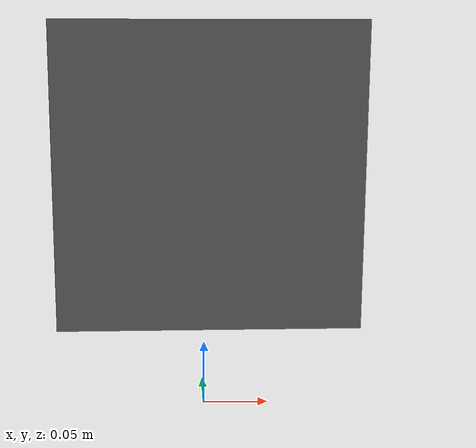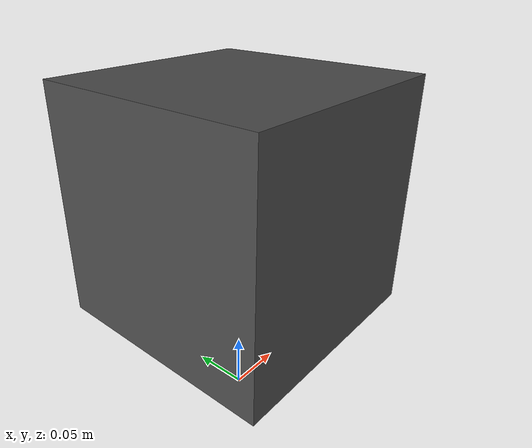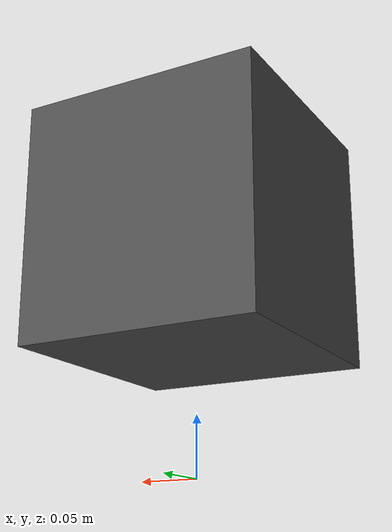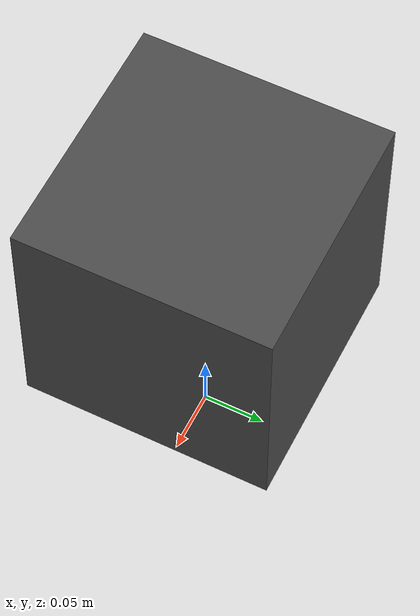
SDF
<?xml version='1.0'?>
<sdf version='1.6'>
  <model name='iris'>
    <pose>0 0 0.194923 0 0 0</pose>
    <link name='base_link'>
      <inertial>
        <pose>0 0 0 0 0 0</pose>
        <mass>1.5</mass>
        <inertia>
          <ixx>0.008</ixx>
          <ixy>0</ixy>
          <ixz>0</ixz>
          <iyy>0.015</iyy>
          <iyz>0</iyz>
          <izz>0.017</izz>
        </inertia>
      </inertial>
      <collision name='base_link_collision'>
        <pose>0 0 -0.08 0 0 0</pose>
        <geometry>
          <box>
            <size>0.47 0.47 0.23</size>
          </box>
        </geometry>
      </collision>
      <visual name='base_link_visual'>
        <geometry>
          <box>
            <size>0.2 0.2 0.2</size>
          </box>
        </geometry>
        <material>
          <script>
            <name>Gazebo/DarkGrey</name>
          </script>
        </material>
      </visual>
    </link>
    <link name='iris/imu_link'>
      <inertial>
        <pose>0 0 0 0 0 0</pose>
        <mass>0.15</mass>
        <inertia>
          <ixx>0.00001</ixx>
          <ixy>0</ixy>
          <ixz>0</ixz>
          <iyy>0.00002</iyy>
          <iyz>0</iyz>
          <izz>0.00002</izz>
        </inertia>
      </inertial>
      <sensor name="imu_sensor" type="imu">
        <pose>0 0 0 3.141593 0 0</pose>
        <always_on>1</always_on>
        <update_rate>1000.0</update_rate>
      </sensor>
    </link>
    <joint name='iris/imu_joint' type='revolute'>
      <child>iris/imu_link</child>
      <parent>base_link</parent>
      <axis>
        <xyz>0 0 1</xyz>
        <limit>
          <lower>0</lower>
          <upper>0</upper>
          <effort>0</effort>
          <velocity>0</velocity>
        </limit>
        <dynamics>
          <damping>1.0</damping>
        </dynamics>
        <use_parent_model_frame>1</use_parent_model_frame>
      </axis>
      <physics>
        <ode>
          <implicit_spring_damper>1</implicit_spring_damper>
        </ode>
      </physics>
    </joint>

    <link name='rotor_0'>
      <pose>0.13 -0.22 0.023 0 -0 0</pose>
      <inertial>
        <pose>0 0 0 0 -0 0</pose>
        <mass>0.025</mass>
        <inertia>
          <ixx>9.75e-06</ixx>
          <ixy>0</ixy>
          <ixz>0</ixz>
          <iyy>0.000166704</iyy>
          <iyz>0</iyz>
          <izz>0.000167604</izz>
        </inertia>
      </inertial>
      <collision name='rotor_0_collision'>
        <pose>0 0 0 0 -0 0</pose>
        <geometry>
          <cylinder>
            <length>0.005</length>
            <radius>0.1</radius>
          </cylinder>
        </geometry>
        <surface>
          <contact>
            <ode/>
          </contact>
          <friction>
            <ode/>
          </friction>
        </surface>
      </collision>
      <gravity>1</gravity>
      <velocity_decay/>
      <self_collide>0</self_collide>
    </link>
    <joint name='rotor_0_joint' type='revolute'>
      <child>rotor_0</child>
      <parent>base_link</parent>
      <axis>
        <xyz>0 0 1</xyz>
        <limit>
          <lower>-1e+16</lower>
          <upper>1e+16</upper>
        </limit>
        <dynamics>
          <damping>0.004</damping>
        </dynamics>
        <use_parent_model_frame>1</use_parent_model_frame>
      </axis>
      <physics>
        <ode>
          <implicit_spring_damper>1</implicit_spring_damper>
        </ode>
      </physics>
    </joint>
    <link name='rotor_1'>
      <pose>-0.13 0.2 0.023 0 -0 0</pose>
      <inertial>
        <pose>0 0 0 0 -0 0</pose>
        <mass>0.025</mass>
        <inertia>
          <ixx>9.75e-06</ixx>
          <ixy>0</ixy>
          <ixz>0</ixz>
          <iyy>0.000166704</iyy>
          <iyz>0</iyz>
          <izz>0.000167604</izz>
        </inertia>
      </inertial>
      <collision name='rotor_1_collision'>
        <pose>0 0 0 0 -0 0</pose>
        <geometry>
          <cylinder>
            <length>0.005</length>
            <radius>0.1</radius>
          </cylinder>
        </geometry>
        <surface>
          <contact>
            <ode/>
          </contact>
          <friction>
            <ode/>
          </friction>
        </surface>
      </collision>
      <gravity>1</gravity>
      <velocity_decay/>
      <self_collide>0</self_collide>
    </link>
    <joint name='rotor_1_joint' type='revolute'>
      <child>rotor_1</child>
      <parent>base_link</parent>
      <axis>
        <xyz>0 0 1</xyz>
        <limit>
          <lower>-1e+16</lower>
          <upper>1e+16</upper>
        </limit>
        <dynamics>
          <damping>0.004</damping>
        </dynamics>
        <use_parent_model_frame>1</use_parent_model_frame>
      </axis>
      <physics>
        <ode>
          <implicit_spring_damper>1</implicit_spring_damper>
        </ode>
      </physics>
    </joint>
    <link name='rotor_2'>
      <pose>0.13 0.22 0.023 0 -0 0</pose>
      <inertial>
        <pose>0 0 0 0 -0 0</pose>
        <mass>0.025</mass>
        <inertia>
          <ixx>9.75e-06</ixx>
          <ixy>0</ixy>
          <ixz>0</ixz>
          <iyy>0.000166704</iyy>
          <iyz>0</iyz>
          <izz>0.000167604</izz>
        </inertia>
      </inertial>
      <collision name='rotor_2_collision'>
        <pose>0 0 0 0 -0 0</pose>
        <geometry>
          <cylinder>
            <length>0.005</length>
            <radius>0.1</radius>
          </cylinder>
        </geometry>
        <surface>
          <contact>
            <ode/>
          </contact>
          <friction>
            <ode/>
          </friction>
        </surface>
      </collision>
      <gravity>1</gravity>
      <velocity_decay/>
      <self_collide>0</self_collide>
    </link>
    <joint name='rotor_2_joint' type='revolute'>
      <child>rotor_2</child>
      <parent>base_link</parent>
      <axis>
        <xyz>0 0 1</xyz>
        <limit>
          <lower>-1e+16</lower>
          <upper>1e+16</upper>
        </limit>
        <dynamics>
          <damping>0.004</damping>
        </dynamics>
        <use_parent_model_frame>1</use_parent_model_frame>
      </axis>
      <physics>
        <ode>
          <implicit_spring_damper>1</implicit_spring_damper>
        </ode>
      </physics>
    </joint>
    <link name='rotor_3'>
      <pose>-0.13 -0.2 0.023 0 -0 0</pose>
      <inertial>
        <pose>0 0 0 0 -0 0</pose>
        <mass>0.025</mass>
        <inertia>
          <ixx>9.75e-06</ixx>
          <ixy>0</ixy>
          <ixz>0</ixz>
          <iyy>0.000166704</iyy>
          <iyz>0</iyz>
          <izz>0.000167604</izz>
        </inertia>
      </inertial>
      <collision name='rotor_3_collision'>
        <pose>0 0 0 0 -0 0</pose>
        <geometry>
          <cylinder>
            <length>0.005</length>
            <radius>0.1</radius>
          </cylinder>
        </geometry>
        <surface>
          <contact>
            <ode/>
          </contact>
          <friction>
            <ode/>
          </friction>
        </surface>
      </collision>
      <gravity>1</gravity>
      <velocity_decay/>
      <self_collide>0</self_collide>
    </link>
    <joint name='rotor_3_joint' type='revolute'>
      <child>rotor_3</child>
      <parent>base_link</parent>
      <axis>
        <xyz>0 0 1</xyz>
        <limit>
          <lower>-1e+16</lower>
          <upper>1e+16</upper>
        </limit>
        <dynamics>
          <damping>0.004</damping>
        </dynamics>
        <use_parent_model_frame>1</use_parent_model_frame>
      </axis>
      <physics>
        <ode>
          <implicit_spring_damper>1</implicit_spring_damper>
        </ode>
      </physics>
    </joint>
    <static>0</static>
  </model>
</sdf>
